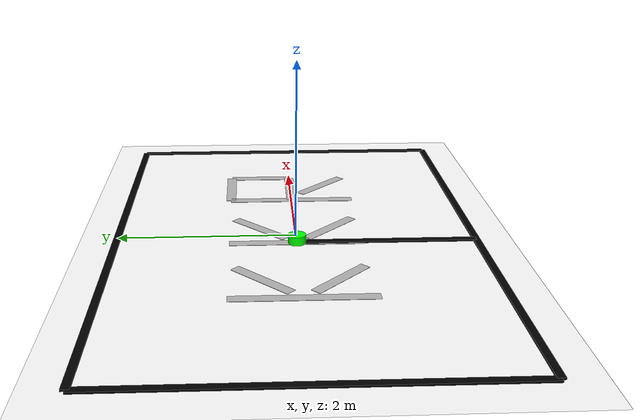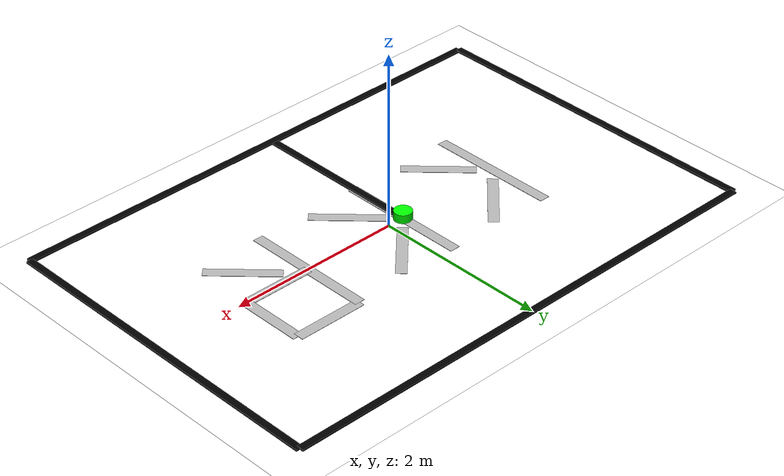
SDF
<?xml version="1.0" ?>
<sdf version="1.6">
  <world name="default">

    <physics name="1ms" type="ignored">
      <max_step_size>0.001</max_step_size>
      <real_time_factor>1.0</real_time_factor>
    </physics>

    <plugin filename="libignition-gazebo-physics-system.so" name="ignition::gazebo::systems::Physics"></plugin>
    <plugin filename="libignition-gazebo-user-commands-system.so" name="ignition::gazebo::systems::UserCommands"></plugin>
    <plugin filename="libignition-gazebo-scene-broadcaster-system.so" name="ignition::gazebo::systems::SceneBroadcaster"></plugin>
    <plugin filename="libignition-gazebo-sensors-system.so" name="ignition::gazebo::systems::Sensors">
      <render_engine>ogre2</render_engine>
    </plugin>

    <gui fullscreen="0">
      <plugin filename="GzScene3D" name="3D View">
        <ignition-gui>
          <title>3D View</title>
          <property type="bool" key="showTitleBar">false</property>
          <property type="string" key="state">docked</property>
        </ignition-gui>
        <engine>ogre2</engine>
        <scene>scene</scene>
        <ambient_light>0.8 0.8 0.8</ambient_light>
        <background_color>0.9 0.9 0.9</background_color>
        <camera_pose>0 0 15 0 1.5 0</camera_pose>
      </plugin>

      <plugin filename="WorldControl" name="World control">
        <ignition-gui>
          <title>World control</title>
          <property type="bool" key="showTitleBar">false</property>
          <property type="bool" key="resizable">false</property>
          <property type="double" key="height">72</property>
          <property type="double" key="width">121</property>
          <property type="double" key="z">1</property>
          <property type="string" key="state">floating</property>
          <anchors target="3D View">
            <line own="left" target="left"/>
            <line own="bottom" target="bottom"/>
          </anchors>
        </ignition-gui>
        <play_pause>true</play_pause>
        <step>true</step>
        <start_paused>true</start_paused>
      </plugin>
    </gui>

    <light type="directional" name="sun">
      <cast_shadows>true</cast_shadows>
      <pose>0 0 10 0 0 0</pose>
      <diffuse>1.0 1.0 1.0 1</diffuse>
      <specular>0.1 0.1 0.1 1</specular>
      <direction>-0.5 0.1 -0.9</direction>
    </light>

    <!-- White Ground -->
    <model name="ground_plane">
      <static>true</static>
      <link name="link">
        <collision name="collision">
          <geometry>
            <plane>
              <normal>0 0 1</normal>
              <size>20 15</size>
            </plane>
          </geometry>
        </collision>
        <visual name="visual">
          <geometry>
            <plane>
              <normal>0 0 1</normal>
              <size>20 15</size>
            </plane>
          </geometry>
          <material>
            <ambient>1.0 1.0 1.0 1</ambient>
            <diffuse>1.0 1.0 1.0 1</diffuse>
          </material>
        </visual>
      </link>
    </model>

    <!-- Start Point (Green Marker) - Positioned at robot's actual starting location -->
    <model name="start_marker">
      <static>true</static>
      <pose>-0.2 0 0.05 0 0 0</pose>
      <link name="link">
        <visual name="visual">
          <geometry>
            <cylinder>
              <radius>0.1</radius>
              <length>0.1</length>
            </cylinder>
          </geometry>
          <material>
            <ambient>0.0 1.0 0.0 1</ambient>
            <diffuse>0.0 1.0 0.0 1</diffuse>
          </material>
        </visual>
      </link>
    </model>

    <!-- BLACK LINE PATH -->

    <!-- Connection Line from robot start to rectangle path -->
    <model name="connection_to_path">
      <static>true</static>
      <pose>-0.2 -1 0.01 0 0 1.57</pose>
      <link name="link">
        <visual name="visual">
          <geometry>
            <box>
              <size>2 0.08 0.02</size>
            </box>
          </geometry>
          <material>
            <ambient>0.0 0.0 0.0 1</ambient>
            <diffuse>0.0 0.0 0.0 1</diffuse>
          </material>
        </visual>
      </link>
    </model>

    <!-- Rectangle Bottom -->
    <model name="rect_bottom">
      <static>true</static>
      <pose>0 -2 0.01 0 0 0</pose>
      <link name="link">
        <visual name="visual">
          <geometry>
            <box>
              <size>6 0.08 0.02</size>
            </box>
          </geometry>
          <material>
            <ambient>0.0 0.0 0.0 1</ambient>
            <diffuse>0.0 0.0 0.0 1</diffuse>
          </material>
        </visual>
      </link>
    </model>

    <!-- Rectangle Right -->
    <model name="rect_right">
      <static>true</static>
      <pose>3 0 0.01 0 0 1.57</pose>
      <link name="link">
        <visual name="visual">
          <geometry>
            <box>
              <size>4 0.08 0.02</size>
            </box>
          </geometry>
          <material>
            <ambient>0.0 0.0 0.0 1</ambient>
            <diffuse>0.0 0.0 0.0 1</diffuse>
          </material>
        </visual>
      </link>
    </model>

    <!-- Rectangle Top -->
    <model name="rect_top">
      <static>true</static>
      <pose>0 2 0.01 0 0 0</pose>
      <link name="link">
        <visual name="visual">
          <geometry>
            <box>
              <size>6 0.08 0.02</size>
            </box>
          </geometry>
          <material>
            <ambient>0.0 0.0 0.0 1</ambient>
            <diffuse>0.0 0.0 0.0 1</diffuse>
          </material>
        </visual>
      </link>
    </model>

    <!-- Rectangle Left -->
    <model name="rect_left">
      <static>true</static>
      <pose>-3 0 0.01 0 0 1.57</pose>
      <link name="link">
        <visual name="visual">
          <geometry>
            <box>
              <size>4 0.08 0.02</size>
            </box>
          </geometry>
          <material>
            <ambient>0.0 0.0 0.0 1</ambient>
            <diffuse>0.0 0.0 0.0 1</diffuse>
          </material>
        </visual>
      </link>
    </model>

    <!-- KKR TEXT (Gray - visible to eye, not camera) -->

    <!-- First K - vertical line -->
    <model name="k1_vertical">
      <static>true</static>
      <pose>-1.5 0 0.002 0 0 1.57</pose>
      <link name="link">
        <visual name="visual">
          <geometry>
            <box>
              <size>1.5 0.12 0.004</size>
            </box>
          </geometry>
          <material>
            <ambient>0.7 0.7 0.7 1</ambient>
            <diffuse>0.7 0.7 0.7 1</diffuse>
          </material>
        </visual>
      </link>
    </model>

    <!-- First K - upper diagonal -->
    <model name="k1_upper">
      <static>true</static>
      <pose>-1.1 0.4 0.002 0 0 0.785</pose>
      <link name="link">
        <visual name="visual">
          <geometry>
            <box>
              <size>0.8 0.12 0.004</size>
            </box>
          </geometry>
          <material>
            <ambient>0.7 0.7 0.7 1</ambient>
            <diffuse>0.7 0.7 0.7 1</diffuse>
          </material>
        </visual>
      </link>
    </model>

    <!-- First K - lower diagonal -->
    <model name="k1_lower">
      <static>true</static>
      <pose>-1.1 -0.4 0.002 0 0 -0.785</pose>
      <link name="link">
        <visual name="visual">
          <geometry>
            <box>
              <size>0.8 0.12 0.004</size>
            </box>
          </geometry>
          <material>
            <ambient>0.7 0.7 0.7 1</ambient>
            <diffuse>0.7 0.7 0.7 1</diffuse>
          </material>
        </visual>
      </link>
    </model>

    <!-- Second K - vertical line -->
    <model name="k2_vertical">
      <static>true</static>
      <pose>-0.2 0 0.002 0 0 1.57</pose>
      <link name="link">
        <visual name="visual">
          <geometry>
            <box>
              <size>1.5 0.12 0.004</size>
            </box>
          </geometry>
          <material>
            <ambient>0.7 0.7 0.7 1</ambient>
            <diffuse>0.7 0.7 0.7 1</diffuse>
          </material>
        </visual>
      </link>
    </model>

    <!-- Second K - upper diagonal -->
    <model name="k2_upper">
      <static>true</static>
      <pose>0.2 0.4 0.002 0 0 0.785</pose>
      <link name="link">
        <visual name="visual">
          <geometry>
            <box>
              <size>0.8 0.12 0.004</size>
            </box>
          </geometry>
          <material>
            <ambient>0.7 0.7 0.7 1</ambient>
            <diffuse>0.7 0.7 0.7 1</diffuse>
          </material>
        </visual>
      </link>
    </model>

    <!-- Second K - lower diagonal -->
    <model name="k2_lower">
      <static>true</static>
      <pose>0.2 -0.4 0.002 0 0 -0.785</pose>
      <link name="link">
        <visual name="visual">
          <geometry>
            <box>
              <size>0.8 0.12 0.004</size>
            </box>
          </geometry>
          <material>
            <ambient>0.7 0.7 0.7 1</ambient>
            <diffuse>0.7 0.7 0.7 1</diffuse>
          </material>
        </visual>
      </link>
    </model>

    <!-- R - vertical line -->
    <model name="r_vertical">
      <static>true</static>
      <pose>1.1 0 0.002 0 0 1.57</pose>
      <link name="link">
        <visual name="visual">
          <geometry>
            <box>
              <size>1.5 0.12 0.004</size>
            </box>
          </geometry>
          <material>
            <ambient>0.7 0.7 0.7 1</ambient>
            <diffuse>0.7 0.7 0.7 1</diffuse>
          </material>
        </visual>
      </link>
    </model>

    <!-- R - top horizontal -->
    <model name="r_top">
      <static>true</static>
      <pose>1.5 0.75 0.002 0 0 0</pose>
      <link name="link">
        <visual name="visual">
          <geometry>
            <box>
              <size>0.8 0.12 0.004</size>
            </box>
          </geometry>
          <material>
            <ambient>0.7 0.7 0.7 1</ambient>
            <diffuse>0.7 0.7 0.7 1</diffuse>
          </material>
        </visual>
      </link>
    </model>

    <!-- R - middle horizontal -->
    <model name="r_middle">
      <static>true</static>
      <pose>1.5 0 0.002 0 0 0</pose>
      <link name="link">
        <visual name="visual">
          <geometry>
            <box>
              <size>0.8 0.12 0.004</size>
            </box>
          </geometry>
          <material>
            <ambient>0.7 0.7 0.7 1</ambient>
            <diffuse>0.7 0.7 0.7 1</diffuse>
          </material>
        </visual>
      </link>
    </model>

    <!-- R - right vertical (upper part) -->
    <model name="r_right_upper">
      <static>true</static>
      <pose>1.9 0.375 0.002 0 0 1.57</pose>
      <link name="link">
        <visual name="visual">
          <geometry>
            <box>
              <size>0.75 0.12 0.004</size>
            </box>
          </geometry>
          <material>
            <ambient>0.7 0.7 0.7 1</ambient>
            <diffuse>0.7 0.7 0.7 1</diffuse>
          </material>
        </visual>
      </link>
    </model>

    <!-- R - diagonal leg -->
    <model name="r_diagonal">
      <static>true</static>
      <pose>1.6 -0.4 0.002 0 0 -0.785</pose>
      <link name="link">
        <visual name="visual">
          <geometry>
            <box>
              <size>0.8 0.12 0.004</size>
            </box>
          </geometry>
          <material>
            <ambient>0.7 0.7 0.7 1</ambient>
            <diffuse>0.7 0.7 0.7 1</diffuse>
          </material>
        </visual>
      </link>
    </model>

  </world>
</sdf>
